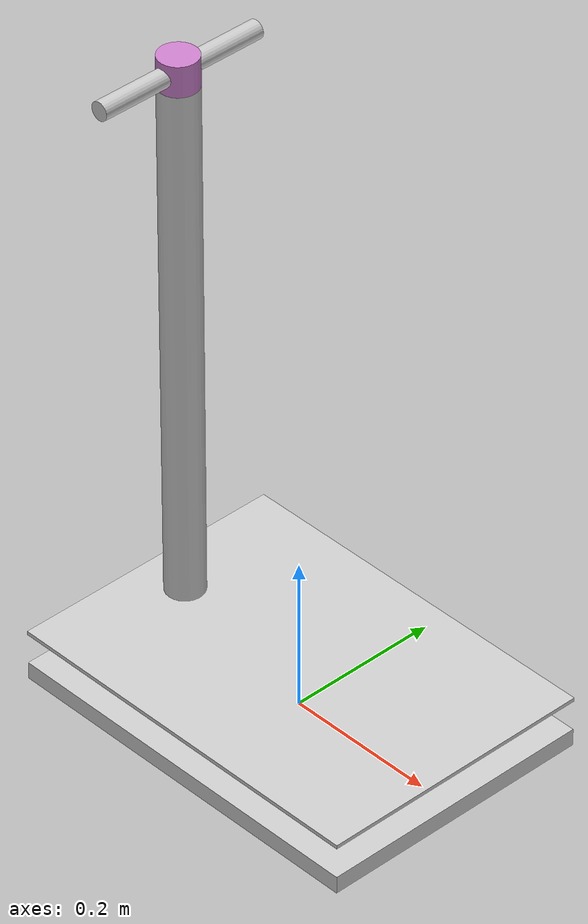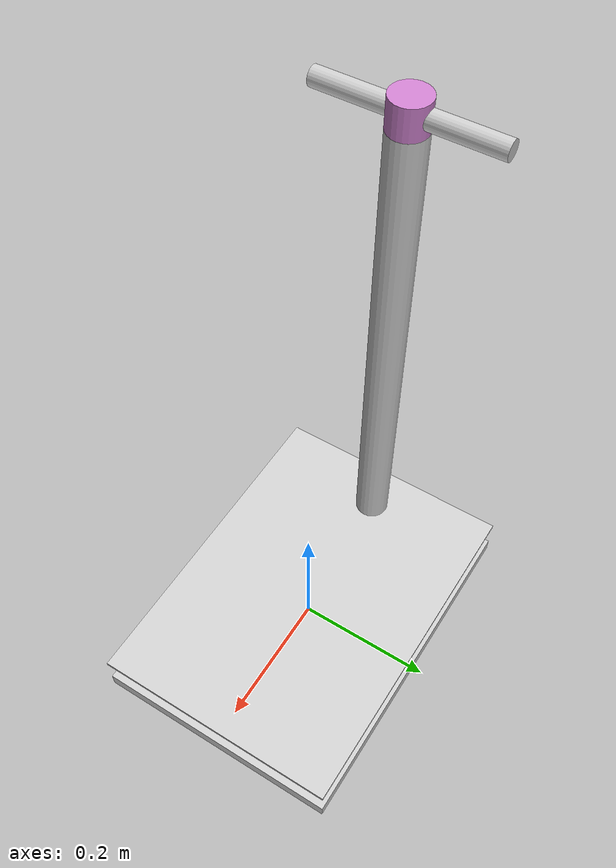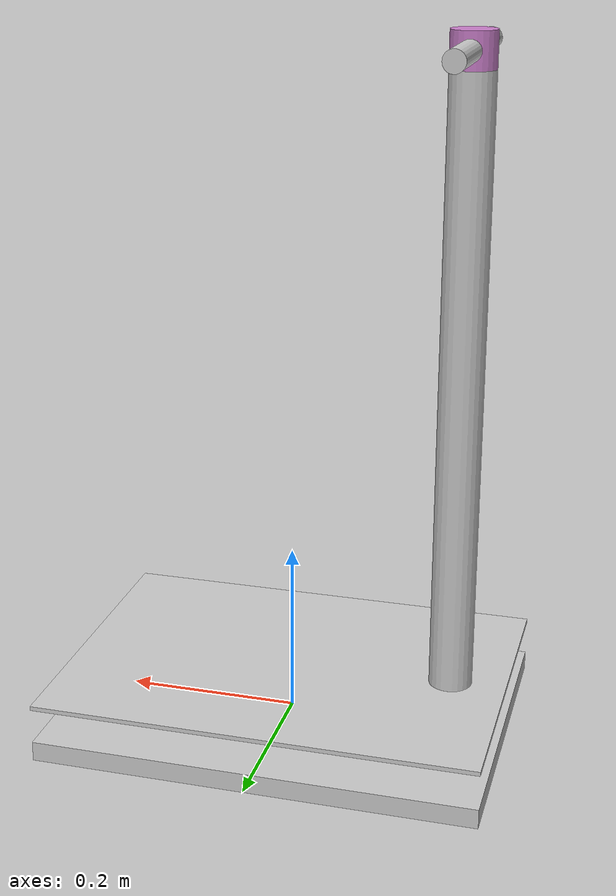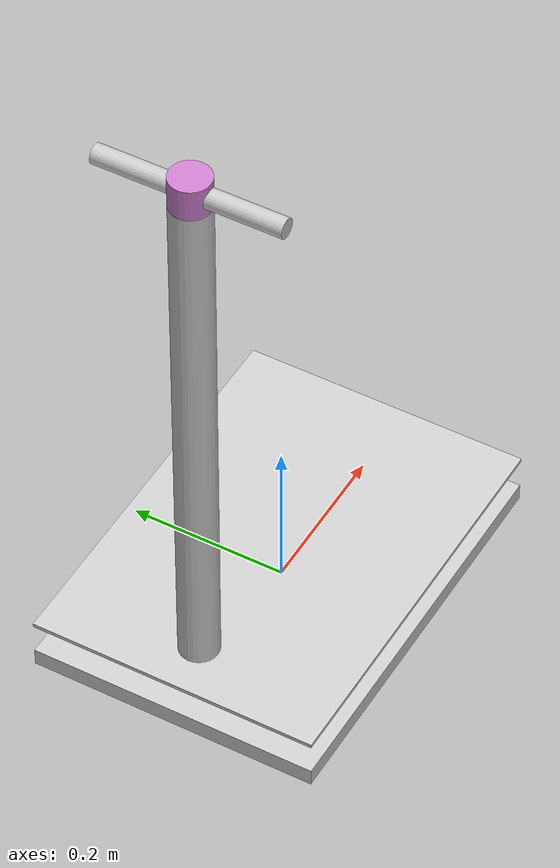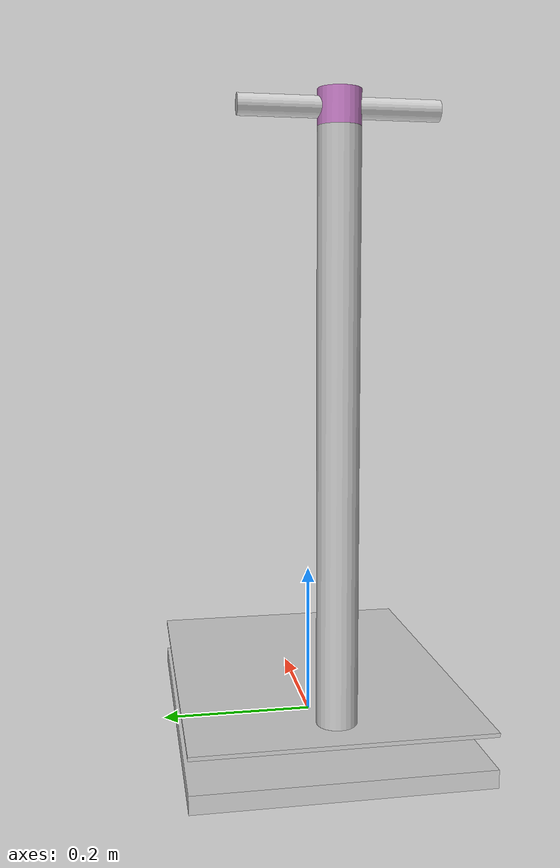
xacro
<?xml version="1.0"?>

 <robot xmlns:sensor="http://playerstage.sourceforge.net/gazebo/xmlschema/#sensor"
       xmlns:controller="http://playerstage.sourceforge.net/gazebo/xmlschema/#controller"
       xmlns:interface="http://playerstage.sourceforge.net/gazebo/xmlschema/#interface"
       xmlns:xacro="http://ros.org/wiki/xacro"
       name="kurtana_rack">

  <property name="M_PI" value="3.1415926535897931" />

  <!-- all values measured by hand - maybe they need to be optimized later -->
  <property name="rackplate_length" value="0.51" />
  <property name="rackplate_width" value="0.368" />
  <property name="rackplate_height" value="0.023" />
  <property name="baseplate_length" value="0.51" />
  <property name="baseplate_width" value="0.368" />
  <property name="baseplate_height" value="0.005" />
  <property name="rackgap" value="0.055" />
  <property name="pole_radius" value="0.025"/>
  <property name="pole_length" value="0.70"/>
  <property name="poletop_radius" value="0.025"/>
  <property name="poletop_length" value="0.04"/>
  <property name="pitchpole_radius" value="0.012"/>
  <property name="pitchpole_length" value="0.23"/>
  <property name="kinect_length" value="0.30" />
  <property name="kinect_width" value="0.08" />
  <property name="kinect_height" value="0.08" />
  <property name="kinect_gap" value="0.015" />

<!-- *** KURTana Rack *** -->

  <link name="kurtana_rackplate_link">
      <visual>
        <origin xyz="0 0 0" rpy="0 0 0" />
        <geometry>
          <box size="${rackplate_length} ${rackplate_width} ${rackplate_height}" />
        </geometry>

        <material name="grey">
          <color rgba="0.8 0.8 0.8 1"/>
        </material>
      </visual>
      <collision>
        <origin xyz="0 0 0" rpy="0 0 0" />
        <geometry>
            <box size="${rackplate_length} ${rackplate_width} ${rackplate_height}" />
        </geometry>
      </collision>
      <inertial>
        <mass value="0.05" />
        <origin xyz="0.0 0.0 10.0" />
        <inertia ixx="1.0" ixy="0.0" ixz="0.0"
                 iyy="1.0" iyz="0.0"
                 izz="1.0" />
      </inertial>
  </link>

  <joint name="kurtana_baseplate_joint" type="fixed">
    <parent link="kurtana_rackplate_link"/>
    <child link="kurtana_baseplate_link"/>
    <origin xyz="0 0 0.055"/>
  </joint>

  <link name="kurtana_baseplate_link">
      <visual>
        <origin xyz="0 0 0" rpy="0 0 0" />
        <geometry>
          <box size="${baseplate_length} ${baseplate_width} ${baseplate_height}" />
        </geometry>

        <material name="grey" />
      </visual>
      <collision>
        <origin xyz="0 0 0" rpy="0 0 0" />
        <geometry>
          <box size="${baseplate_length} ${baseplate_width} ${baseplate_height}" />
        </geometry>
      </collision>
  </link>

   <joint name="kurtana_pole_joint" type="fixed">
    <parent link="kurtana_baseplate_link"/>
    <child link="kurtana_pole_link"/>
    <origin xyz="-0.19 0 0"/>
   </joint>

  <link name="kurtana_pole_link">
      <visual>
        <origin xyz="0 0 ${pole_length/2}" rpy="0 0 0" />
        <geometry>
         <cylinder radius="${pole_radius}" length="${pole_length}"/>
        </geometry>

        <material name="grey" />
      </visual>
      <collision>
        <origin xyz="0 0 ${pole_length/2}" rpy="0 0 0" />
        <geometry>
          <cylinder radius="${pole_radius}" length="${pole_length}"/>
        </geometry>
      </collision>
  </link>

  <joint name="kurtana_stretch_joint" type="prismatic">
    <parent link="kurtana_pole_link"/>
    <child link="kurtana_poletop_stretch_link"/>
    <origin xyz="0 0 ${pole_length}" rpy="0 0 0"/>
    <limit effort="1000.0" lower="0" upper="0.515" velocity="0.5"/>
    <origin rpy="0 0 0" xyz="0 0 0"/>
    <axis xyz="0 0 1"/>
  </joint>

 <link name="kurtana_poletop_stretch_link">
        <collision>
        <origin xyz="0 0 ${poletop_length/2}" rpy="0 0 0" />
        <geometry>
         <cylinder radius="${poletop_radius}" length="${poletop_length}"/>
        </geometry>
      </collision>
  </link>

   <joint name="kurtana_roll_joint" type="revolute">
    <parent link="kurtana_poletop_stretch_link"/>
    <child link="kurtana_poletop_roll_link"/>
    <origin xyz="0 0 0" rpy="0 0 0"/>
    <axis xyz="0 0 1"/>
    <limit effort="1000.0" lower="${-M_PI/2}" upper="${M_PI/2}" velocity="2.0"/>
  </joint>

  <link name="kurtana_poletop_roll_link">
      <visual>
        <origin xyz="0 0 ${poletop_length/2}" rpy="0 0 0" />
        <geometry>
          <cylinder radius="${poletop_radius}" length="${poletop_length}"/>
        </geometry>
        <material name="red">
          <color rgba="0.8 0.5 0.8 1"/>
        </material>
      </visual>
      <collision>
        <origin xyz="0 0 ${poletop_length/2}" rpy="0 0 0" />
        <geometry>
         <cylinder radius="${poletop_radius}" length="${poletop_length}"/>
        </geometry>
      </collision>
  </link>

  <joint name="kurtana_pitch_joint" type="revolute">
    <parent link="kurtana_poletop_roll_link" />
    <child link="kurtana_pitchpole_link" />
    <origin xyz="0 0 ${poletop_length/2}" rpy="0 0 0"/>
    <axis xyz="0 1 0"/>
    <limit effort="1000.0" lower="${-M_PI/2}" upper="${M_PI/2}" velocity="2.0"/>
  </joint>

  <link name="kurtana_pitchpole_link">
      <visual>
        <origin rpy="${-M_PI/2} 0 0" xyz="0 0 0"/>
        <geometry>
          <cylinder radius="${pitchpole_radius}" length="${pitchpole_length}"/>
        </geometry>
        <material name="grey" />
      </visual>
      <collision>
        <origin rpy="${-M_PI/2} 0 0" xyz="0 0 0"/>
        <geometry>
         <cylinder radius="${pitchpole_radius}" length="${pitchpole_length}"/>
        </geometry>
      </collision>
  </link>

</robot>
